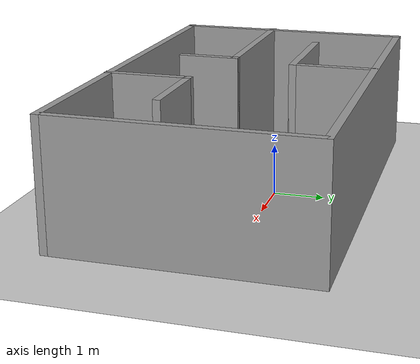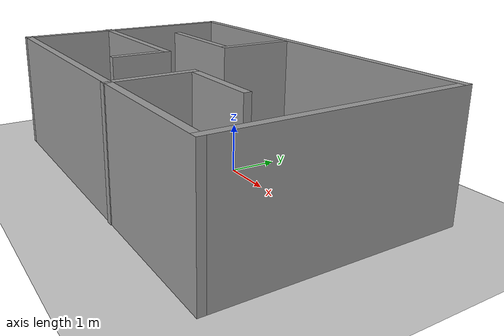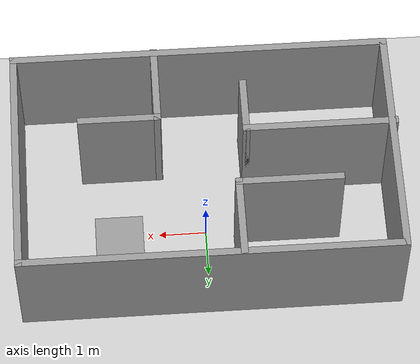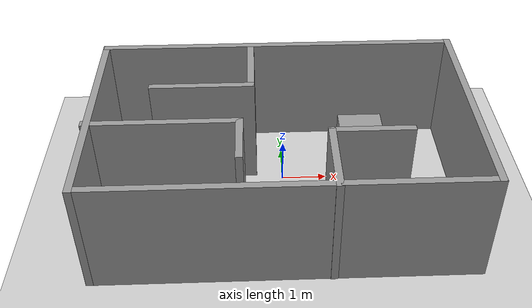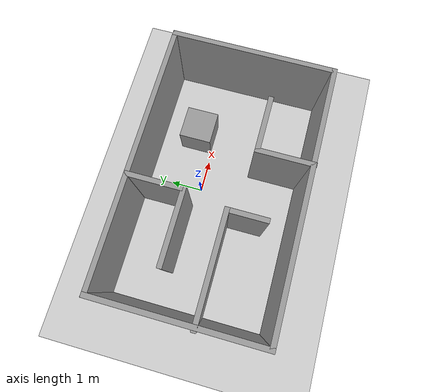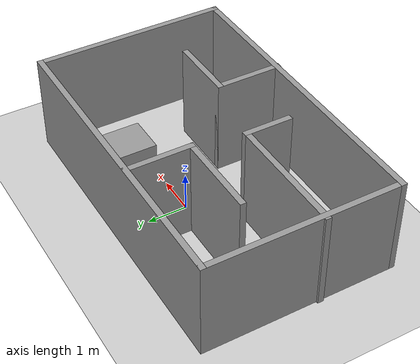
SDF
<sdf version="1.7">
 <world name="default">
  <light name="sun" type="directional">
   <pose>0 0 10 0 -0 0</pose>
   <diffuse>0.8 0.8 0.8 1</diffuse>
   <specular>0.2 0.2 0.2 1</specular>
   <attenuation>
    <range>1000</range>
    <constant>0.9</constant>
    <linear>0.01</linear>
    <quadratic>0.001</quadratic>
   </attenuation>
   <direction>-0.5 0.1 -0.9</direction>
   <spot><inner_angle>0</inner_angle><outer_angle>0</outer_angle><falloff>0</falloff></spot>
  </light>
  <model name="ground_plane">
   <static>1</static>
   <link name="link">
    <collision name="collision">
     <geometry><plane><normal>0 0 1</normal><size>100 100</size></plane></geometry>
     <surface>
      <contact><collide_bitmask>65535</collide_bitmask></contact>
      <friction><ode><mu>100</mu><mu2>50</mu2></ode></friction>
     </surface>
    </collision>
    <visual name="visual">
     <cast_shadows>0</cast_shadows>
     <geometry><plane><normal>0 0 1</normal><size>100 100</size></plane></geometry>
     <material>
      <script><uri>file://media/materials/scripts/gazebo.material</uri><name>Gazebo/Grey</name></script>
     </material>
    </visual>
   </link>
  </model>
  <gravity>0 0 -9.8</gravity>
  <magnetic_field>6e-06 2.3e-05 -4.2e-05</magnetic_field>
  <atmosphere type="adiabatic"/>
  <physics type="ode">
   <max_step_size>0.001</max_step_size>
   <real_time_factor>1</real_time_factor>
   <real_time_update_rate>1000</real_time_update_rate>
  </physics>
  <scene><ambient>0.4 0.4 0.4 1</ambient><background>0.7 0.7 0.7 1</background><shadows>1</shadows></scene>
  <audio><device>default</device></audio>
  <spherical_coordinates>
   <surface_model>EARTH_WGS84</surface_model>
   <latitude_deg>0</latitude_deg>
   <longitude_deg>0</longitude_deg>
   <elevation>0</elevation>
   <heading_deg>0</heading_deg>
  </spherical_coordinates>
  <model name="room">
   <pose>-0.061235 0.080609 0 0 -0 0</pose>
   <link name="Wall_0">
    <collision name="Wall_0_Collision">
     <geometry><box><size>8 0.15 2.5</size></box></geometry>
     <pose>0 0 1.25 0 -0 0</pose>
    </collision>
    <visual name="Wall_0_Visual">
     <pose>0 0 1.25 0 -0 0</pose>
     <geometry><box><size>8 0.15 2.5</size></box></geometry>
     <material>
      <script><uri>file://media/materials/scripts/gazebo.material</uri><name>Gazebo/Grey</name></script>
      <ambient>1 1 1 1</ambient>
     </material>
     <meta><layer>0</layer></meta>
    </visual>
    <pose>0.026788 1.7353 0 0 -0 0</pose>
   </link>
   <link name="Wall_1">
    <collision name="Wall_1_Collision">
     <geometry><box><size>5 0.15 2.5</size></box></geometry>
     <pose>0 0 1.25 0 -0 0</pose>
    </collision>
    <visual name="Wall_1_Visual">
     <pose>0 0 1.25 0 -0 0</pose>
     <geometry><box><size>5 0.15 2.5</size></box></geometry>
     <material>
      <script><uri>file://media/materials/scripts/gazebo.material</uri><name>Gazebo/Grey</name></script>
      <ambient>1 1 1 1</ambient>
     </material>
     <meta><layer>0</layer></meta>
    </visual>
    <pose>3.95179 -0.689702 0 0 -0 -1.5708</pose>
   </link>
   <link name="Wall_11">
    <collision name="Wall_11_Collision">
     <geometry><box><size>1.75 0.15 2.5</size></box></geometry>
     <pose>0 0 1.25 0 -0 0</pose>
    </collision>
    <visual name="Wall_11_Visual">
     <pose>0 0 1.25 0 -0 0</pose>
     <geometry><box><size>1.75 0.15 2.5</size></box></geometry>
     <material>
      <script><uri>file://media/materials/scripts/gazebo.material</uri><name>Gazebo/Grey</name></script>
      <ambient>1 1 1 1</ambient>
     </material>
     <meta><layer>0</layer></meta>
    </visual>
    <pose>0.980409 -2.3303 0 0 -0 1.5708</pose>
   </link>
   <link name="Wall_12">
    <collision name="Wall_12_Collision">
     <geometry><box><size>1.75 0.15 2.5</size></box></geometry>
     <pose>0 0 1.25 0 -0 0</pose>
    </collision>
    <visual name="Wall_12_Visual">
     <pose>0 0 1.25 0 -0 0</pose>
     <geometry><box><size>1.75 0.15 2.5</size></box></geometry>
     <material>
      <script><uri>file://media/materials/scripts/gazebo.material</uri><name>Gazebo/Grey</name></script>
      <ambient>1 1 1 1</ambient>
     </material>
     <meta><layer>0</layer></meta>
    </visual>
    <pose>1.78041 -1.5303 0 0 -0 0</pose>
   </link>
   <link name="Wall_2">
    <collision name="Wall_2_Collision">
     <geometry><box><size>8 0.15 2.5</size></box></geometry>
     <pose>0 0 1.25 0 -0 0</pose>
    </collision>
    <visual name="Wall_2_Visual">
     <pose>0 0 1.25 0 -0 0</pose>
     <geometry><box><size>8 0.15 2.5</size></box></geometry>
     <material>
      <script><uri>file://media/materials/scripts/gazebo.material</uri><name>Gazebo/Grey</name></script>
      <ambient>1 1 1 1</ambient>
     </material>
     <meta><layer>0</layer></meta>
    </visual>
    <pose>0.026788 -3.1147 0 0 -0 3.14159</pose>
   </link>
   <link name="Wall_3">
    <collision name="Wall_3_Collision">
     <geometry><box><size>5 0.15 2.5</size></box></geometry>
     <pose>0 0 1.25 0 -0 0</pose>
    </collision>
    <visual name="Wall_3_Visual">
     <pose>0 0 1.25 0 -0 0</pose>
     <geometry><box><size>5 0.15 2.5</size></box></geometry>
     <material>
      <script><uri>file://media/materials/scripts/gazebo.material</uri><name>Gazebo/Grey</name></script>
      <ambient>1 1 1 1</ambient>
     </material>
     <meta><layer>0</layer></meta>
    </visual>
    <pose>-3.89821 -0.689702 0 0 -0 1.5708</pose>
   </link>
   <link name="Wall_5">
    <collision name="Wall_5_Collision">
     <geometry><box><size>1.75 0.15 2.5</size></box></geometry>
     <pose>0 0 1.25 0 -0 0</pose>
    </collision>
    <visual name="Wall_5_Visual">
     <pose>0 0 1.25 0 -0 0</pose>
     <geometry><box><size>1.75 0.15 2.5</size></box></geometry>
     <material>
      <script><uri>file://media/materials/scripts/gazebo.material</uri><name>Gazebo/Grey</name></script>
      <ambient>1 1 1 1</ambient>
     </material>
     <meta><layer>0</layer></meta>
    </visual>
    <pose>-0.611186 0.914449 0 0 -0 -1.5708</pose>
   </link>
   <link name="Wall_6">
    <collision name="Wall_6_Collision">
     <geometry><box><size>2.25 0.15 2.5</size></box></geometry>
     <pose>0 0 1.25 0 -0 0</pose>
    </collision>
    <visual name="Wall_6_Visual">
     <pose>0 0 1.25 0 -0 0</pose>
     <geometry><box><size>2.25 0.15 2.5</size></box></geometry>
     <material>
      <script><uri>file://media/materials/scripts/gazebo.material</uri><name>Gazebo/Grey</name></script>
      <ambient>1 1 1 1</ambient>
     </material>
     <meta><layer>0</layer></meta>
    </visual>
    <pose>-1.66119 0.114449 0 0 -0 3.14159</pose>
   </link>
   <link name="Wall_8">
    <collision name="Wall_8_Collision">
     <geometry><box><size>3.25 0.15 2.5</size></box></geometry>
     <pose>0 0 1.25 0 -0 0</pose>
    </collision>
    <visual name="Wall_8_Visual">
     <pose>0 0 1.25 0 -0 0</pose>
     <geometry><box><size>3.25 0.15 2.5</size></box></geometry>
     <material>
      <script><uri>file://media/materials/scripts/gazebo.material</uri><name>Gazebo/Grey</name></script>
      <ambient>1 1 1 1</ambient>
     </material>
     <meta><layer>0</layer></meta>
    </visual>
    <pose>-2.40179 -1.15392 0 0 -0 0</pose>
   </link>
   <link name="Wall_9">
    <collision name="Wall_9_Collision">
     <geometry><box><size>1.25 0.15 2.5</size></box></geometry>
     <pose>0 0 1.25 0 -0 0</pose>
    </collision>
    <visual name="Wall_9_Visual">
     <pose>0 0 1.25 0 -0 0</pose>
     <geometry><box><size>1.25 0.15 2.5</size></box></geometry>
     <material>
      <script><uri>file://media/materials/scripts/gazebo.material</uri><name>Gazebo/Grey</name></script>
      <ambient>1 1 1 1</ambient>
     </material>
     <meta><layer>0</layer></meta>
    </visual>
    <pose>-0.851788 -1.70392 0 0 -0 -1.5708</pose>
   </link>
   <static>1</static>
  </model>
  <model name="unit_box">
   <pose>1.83826 0.559407 0.499995 1e-05 -0 0</pose>
   <link name="link">
    <inertial>
     <mass>1</mass>
     <inertia>
      <ixx>0.166667</ixx>
      <ixy>0</ixy>
      <ixz>0</ixz>
      <iyy>0.166667</iyy>
      <iyz>0</iyz>
      <izz>0.166667</izz>
     </inertia>
    </inertial>
    <collision name="collision"><geometry><box><size>1 1 1</size></box></geometry></collision>
    <visual name="visual">
     <geometry><box><size>1 1 1</size></box></geometry>
     <material>
      <script><name>Gazebo/Grey</name><uri>file://media/materials/scripts/gazebo.material</uri></script>
     </material>
    </visual>
   </link>
  </model>
 </world>
</sdf>
